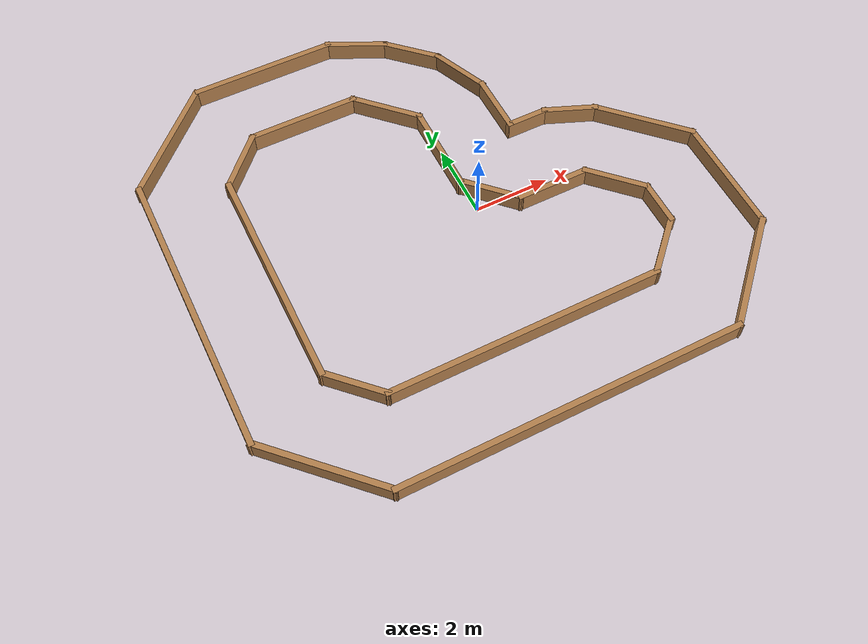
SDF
<?xml version='1.0'?>
<sdf version='1.6'>
  <model name='test-3'>
    <pose frame=''>-0.733583 0.254423 0 0 -0 0</pose>
    <link name='Wall_0'>
      <collision name='Wall_0_Collision'>
        <geometry>
          <box>
            <size>6 0.15 0.5</size>
          </box>
        </geometry>
        <pose frame=''>0 0 0.25 0 -0 0</pose>
      </collision>
      <visual name='Wall_0_Visual'>
        <pose frame=''>0 0 0.25 0 -0 0</pose>
        <geometry>
          <box>
            <size>6 0.15 0.5</size>
          </box>
        </geometry>
        <material>
          <script>
            <uri>file://media/materials/scripts/gazebo.material</uri>
            <name>Gazebo/Wood</name>
          </script>
          <ambient>1 1 1 1</ambient>
        </material>
      </visual>
      <pose frame=''>-4.64742 -0.004423 0 0 0 -1.5708</pose>
    </link>
    <link name='Wall_1'>
      <collision name='Wall_1_Collision'>
        <geometry>
          <box>
            <size>1.75 0.15 0.5</size>
          </box>
        </geometry>
        <pose frame=''>0 0 0.25 0 -0 0</pose>
      </collision>
      <visual name='Wall_1_Visual'>
        <pose frame=''>0 0 0.25 0 -0 0</pose>
        <geometry>
          <box>
            <size>1.75 0.15 0.5</size>
          </box>
        </geometry>
        <material>
          <script>
            <uri>file://media/materials/scripts/gazebo.material</uri>
            <name>Gazebo/Wood</name>
          </script>
          <ambient>1 1 1 1</ambient>
        </material>
      </visual>
      <pose frame=''>-4.08142 -3.49542 0 0 0 -0.785398</pose>
    </link>
    <link name='Wall_10'>
      <collision name='Wall_10_Collision'>
        <geometry>
          <box>
            <size>3 0.15 0.5</size>
          </box>
        </geometry>
        <pose frame=''>0 0 0.25 0 -0 0</pose>
      </collision>
      <visual name='Wall_10_Visual'>
        <pose frame=''>0 0 0.25 0 -0 0</pose>
        <geometry>
          <box>
            <size>3 0.15 0.5</size>
          </box>
        </geometry>
        <material>
          <script>
            <uri>file://media/materials/scripts/gazebo.material</uri>
            <name>Gazebo/Wood</name>
          </script>
          <ambient>1 1 1 1</ambient>
        </material>
      </visual>
      <pose frame=''>-2.13042 4.09158 0 0 -0 3.14159</pose>
    </link>
    <link name='Wall_11'>
      <collision name='Wall_11_Collision'>
        <geometry>
          <box>
            <size>1.75098 0.15 0.5</size>
          </box>
        </geometry>
        <pose frame=''>0 0 0.25 0 -0 0</pose>
      </collision>
      <visual name='Wall_11_Visual'>
        <pose frame=''>0 0 0.25 0 -0 0</pose>
        <geometry>
          <box>
            <size>1.75098 0.15 0.5</size>
          </box>
        </geometry>
        <material>
          <script>
            <uri>file://media/materials/scripts/gazebo.material</uri>
            <name>Gazebo/Wood</name>
          </script>
          <ambient>1 1 1 1</ambient>
        </material>
      </visual>
      <pose frame=''>-4.10142 3.50608 0 0 0 -2.3213</pose>
    </link>
    <link name='Wall_13'>
      <collision name='Wall_13_Collision'>
        <geometry>
          <box>
            <size>3.49886 0.15 0.5</size>
          </box>
        </geometry>
        <pose frame=''>0 0 0.25 0 -0 0</pose>
      </collision>
      <visual name='Wall_13_Visual'>
        <pose frame=''>0 0 0.25 0 -0 0</pose>
        <geometry>
          <box>
            <size>3.49886 0.15 0.5</size>
          </box>
        </geometry>
        <material>
          <script>
            <uri>file://media/materials/scripts/gazebo.material</uri>
            <name>Gazebo/Wood</name>
          </script>
          <ambient>1 1 1 1</ambient>
        </material>
      </visual>
      <pose frame=''>-5.52142 4.98458 0 0 0 -2.35619</pose>
    </link>
    <link name='Wall_14'>
      <collision name='Wall_14_Collision'>
        <geometry>
          <box>
            <size>7.75 0.15 0.5</size>
          </box>
        </geometry>
        <pose frame=''>0 0 0.25 0 -0 0</pose>
      </collision>
      <visual name='Wall_14_Visual'>
        <pose frame=''>0 0 0.25 0 -0 0</pose>
        <geometry>
          <box>
            <size>7.75 0.15 0.5</size>
          </box>
        </geometry>
        <material>
          <script>
            <uri>file://media/materials/scripts/gazebo.material</uri>
            <name>Gazebo/Wood</name>
          </script>
          <ambient>1 1 1 1</ambient>
        </material>
      </visual>
      <pose frame=''>-6.70542 0.000577 0 0 0 -1.5708</pose>
    </link>
    <link name='Wall_15'>
      <collision name='Wall_15_Collision'>
        <geometry>
          <box>
            <size>3.5 0.15 0.5</size>
          </box>
        </geometry>
        <pose frame=''>0 0 0.25 0 -0 0</pose>
      </collision>
      <visual name='Wall_15_Visual'>
        <pose frame=''>0 0 0.25 0 -0 0</pose>
        <geometry>
          <box>
            <size>3.5 0.15 0.5</size>
          </box>
        </geometry>
        <material>
          <script>
            <uri>file://media/materials/scripts/gazebo.material</uri>
            <name>Gazebo/Wood</name>
          </script>
          <ambient>1 1 1 1</ambient>
        </material>
      </visual>
      <pose frame=''>-5.52142 -4.98392 0 0 0 -0.785609</pose>
    </link>
    <link name='Wall_16'>
      <collision name='Wall_16_Collision'>
        <geometry>
          <box>
            <size>9 0.15 0.5</size>
          </box>
        </geometry>
        <pose frame=''>0 0 0.25 0 -0 0</pose>
      </collision>
      <visual name='Wall_16_Visual'>
        <pose frame=''>0 0 0.25 0 -0 0</pose>
        <geometry>
          <box>
            <size>9 0.15 0.5</size>
          </box>
        </geometry>
        <material>
          <script>
            <uri>file://media/materials/scripts/gazebo.material</uri>
            <name>Gazebo/Wood</name>
          </script>
          <ambient>1 1 1 1</ambient>
        </material>
      </visual>
      <pose frame=''>0.087583 -6.16842 0 0 -0 0</pose>
    </link>
    <link name='Wall_17'>
      <collision name='Wall_17_Collision'>
        <geometry>
          <box>
            <size>3.25 0.15 0.5</size>
          </box>
        </geometry>
        <pose frame=''>0 0 0.25 0 -0 0</pose>
      </collision>
      <visual name='Wall_17_Visual'>
        <pose frame=''>0 0 0.25 0 -0 0</pose>
        <geometry>
          <box>
            <size>3.25 0.15 0.5</size>
          </box>
        </geometry>
        <material>
          <script>
            <uri>file://media/materials/scripts/gazebo.material</uri>
            <name>Gazebo/Wood</name>
          </script>
          <ambient>1 1 1 1</ambient>
        </material>
      </visual>
      <pose frame=''>5.60908 -5.07242 0 0 -0 0.78517</pose>
    </link>
    <link name='Wall_18'>
      <collision name='Wall_18_Collision'>
        <geometry>
          <box>
            <size>3.25 0.15 0.5</size>
          </box>
        </geometry>
        <pose frame=''>0 0 0.25 0 -0 0</pose>
      </collision>
      <visual name='Wall_18_Visual'>
        <pose frame=''>0 0 0.25 0 -0 0</pose>
        <geometry>
          <box>
            <size>3.25 0.15 0.5</size>
          </box>
        </geometry>
        <material>
          <script>
            <uri>file://media/materials/scripts/gazebo.material</uri>
            <name>Gazebo/Wood</name>
          </script>
          <ambient>1 1 1 1</ambient>
        </material>
      </visual>
      <pose frame=''>6.70558 -2.42642 0 0 -0 1.5708</pose>
    </link>
    <link name='Wall_19'>
      <collision name='Wall_19_Collision'>
        <geometry>
          <box>
            <size>2.75 0.15 0.5</size>
          </box>
        </geometry>
        <pose frame=''>0 0 0.25 0 -0 0</pose>
      </collision>
      <visual name='Wall_19_Visual'>
        <pose frame=''>0 0 0.25 0 -0 0</pose>
        <geometry>
          <box>
            <size>2.75 0.15 0.5</size>
          </box>
        </geometry>
        <material>
          <script>
            <uri>file://media/materials/scripts/gazebo.material</uri>
            <name>Gazebo/Wood</name>
          </script>
          <ambient>1 1 1 1</ambient>
        </material>
      </visual>
      <pose frame=''>5.78608 0.042577 0 0 -0 2.35647</pose>
    </link>
    <link name='Wall_2'>
      <collision name='Wall_2_Collision'>
        <geometry>
          <box>
            <size>7.25 0.15 0.5</size>
          </box>
        </geometry>
        <pose frame=''>0 0 0.25 0 -0 0</pose>
      </collision>
      <visual name='Wall_2_Visual'>
        <pose frame=''>0 0 0.25 0 -0 0</pose>
        <geometry>
          <box>
            <size>7.25 0.15 0.5</size>
          </box>
        </geometry>
        <material>
          <script>
            <uri>file://media/materials/scripts/gazebo.material</uri>
            <name>Gazebo/Wood</name>
          </script>
          <ambient>1 1 1 1</ambient>
        </material>
      </visual>
      <pose frame=''>0.034583 -4.06142 0 0 -0 0</pose>
    </link>
    <link name='Wall_20'>
      <collision name='Wall_20_Collision'>
        <geometry>
          <box>
            <size>1.49228 0.15 0.5</size>
          </box>
        </geometry>
        <pose frame=''>0 0 0.25 0 -0 0</pose>
      </collision>
      <visual name='Wall_20_Visual'>
        <pose frame=''>0 0 0.25 0 -0 0</pose>
        <geometry>
          <box>
            <size>1.49228 0.15 0.5</size>
          </box>
        </geometry>
        <material>
          <script>
            <uri>file://media/materials/scripts/gazebo.material</uri>
            <name>Gazebo/Wood</name>
          </script>
          <ambient>1 1 1 1</ambient>
        </material>
      </visual>
      <pose frame=''>4.24508 1.21508 0 0 -0 2.75431</pose>
    </link>
    <link name='Wall_21'>
      <collision name='Wall_21_Collision'>
        <geometry>
          <box>
            <size>1.18189 0.15 0.5</size>
          </box>
        </geometry>
        <pose frame=''>0 0 0.25 0 -0 0</pose>
      </collision>
      <visual name='Wall_21_Visual'>
        <pose frame=''>0 0 0.25 0 -0 0</pose>
        <geometry>
          <box>
            <size>1.18189 0.15 0.5</size>
          </box>
        </geometry>
        <material>
          <script>
            <uri>file://media/materials/scripts/gazebo.material</uri>
            <name>Gazebo/Wood</name>
          </script>
          <ambient>1 1 1 1</ambient>
        </material>
      </visual>
      <pose frame=''>3.10808 1.46858 0 0 -0 3.14159</pose>
    </link>
    <link name='Wall_22'>
      <collision name='Wall_22_Collision'>
        <geometry>
          <box>
            <size>1.69243 0.15 0.5</size>
          </box>
        </geometry>
        <pose frame=''>0 0 0.25 0 -0 0</pose>
      </collision>
      <visual name='Wall_22_Visual'>
        <pose frame=''>0 0 0.25 0 -0 0</pose>
        <geometry>
          <box>
            <size>1.69243 0.15 0.5</size>
          </box>
        </geometry>
        <material>
          <script>
            <uri>file://media/materials/scripts/gazebo.material</uri>
            <name>Gazebo/Wood</name>
          </script>
          <ambient>1 1 1 1</ambient>
        </material>
      </visual>
      <pose frame=''>2.58808 2.24008 0 0 -0 1.57663</pose>
    </link>
    <link name='Wall_23'>
      <collision name='Wall_23_Collision'>
        <geometry>
          <box>
            <size>1.69023 0.15 0.5</size>
          </box>
        </geometry>
        <pose frame=''>0 0 0.25 0 -0 0</pose>
      </collision>
      <visual name='Wall_23_Visual'>
        <pose frame=''>0 0 0.25 0 -0 0</pose>
        <geometry>
          <box>
            <size>1.69023 0.15 0.5</size>
          </box>
        </geometry>
        <material>
          <script>
            <uri>file://media/materials/scripts/gazebo.material</uri>
            <name>Gazebo/Wood</name>
          </script>
          <ambient>1 1 1 1</ambient>
        </material>
      </visual>
      <pose frame=''>2.27858 3.71858 0 0 -0 1.97808</pose>
    </link>
    <link name='Wall_24'>
      <collision name='Wall_24_Collision'>
        <geometry>
          <box>
            <size>1.67911 0.15 0.5</size>
          </box>
        </geometry>
        <pose frame=''>0 0 0.25 0 -0 0</pose>
      </collision>
      <visual name='Wall_24_Visual'>
        <pose frame=''>0 0 0.25 0 -0 0</pose>
        <geometry>
          <box>
            <size>1.67911 0.15 0.5</size>
          </box>
        </geometry>
        <material>
          <script>
            <uri>file://media/materials/scripts/gazebo.material</uri>
            <name>Gazebo/Wood</name>
          </script>
          <ambient>1 1 1 1</ambient>
        </material>
      </visual>
      <pose frame=''>1.42158 4.95458 0 0 -0 2.37747</pose>
    </link>
    <link name='Wall_25'>
      <collision name='Wall_25_Collision'>
        <geometry>
          <box>
            <size>1.70828 0.15 0.5</size>
          </box>
        </geometry>
        <pose frame=''>0 0 0.25 0 -0 0</pose>
      </collision>
      <visual name='Wall_25_Visual'>
        <pose frame=''>0 0 0.25 0 -0 0</pose>
        <geometry>
          <box>
            <size>1.70828 0.15 0.5</size>
          </box>
        </geometry>
        <material>
          <script>
            <uri>file://media/materials/scripts/gazebo.material</uri>
            <name>Gazebo/Wood</name>
          </script>
          <ambient>1 1 1 1</ambient>
        </material>
      </visual>
      <pose frame=''>0.168583 5.82308 0 0 -0 2.69058</pose>
    </link>
    <link name='Wall_26'>
      <collision name='Wall_26_Collision'>
        <geometry>
          <box>
            <size>3.91123 0.15 0.5</size>
          </box>
        </geometry>
        <pose frame=''>0 0 0.25 0 -0 0</pose>
      </collision>
      <visual name='Wall_26_Visual'>
        <pose frame=''>0 0 0.25 0 -0 0</pose>
        <geometry>
          <box>
            <size>3.91123 0.15 0.5</size>
          </box>
        </geometry>
        <material>
          <script>
            <uri>file://media/materials/scripts/gazebo.material</uri>
            <name>Gazebo/Wood</name>
          </script>
          <ambient>1 1 1 1</ambient>
        </material>
      </visual>
      <pose frame=''>-2.41292 6.16258 0 0 -0 3.14159</pose>
    </link>
    <link name='Wall_3'>
      <collision name='Wall_3_Collision'>
        <geometry>
          <box>
            <size>1.75 0.15 0.5</size>
          </box>
        </geometry>
        <pose frame=''>0 0 0.25 0 -0 0</pose>
      </collision>
      <visual name='Wall_3_Visual'>
        <pose frame=''>0 0 0.25 0 -0 0</pose>
        <geometry>
          <box>
            <size>1.75 0.15 0.5</size>
          </box>
        </geometry>
        <material>
          <script>
            <uri>file://media/materials/scripts/gazebo.material</uri>
            <name>Gazebo/Wood</name>
          </script>
          <ambient>1 1 1 1</ambient>
        </material>
      </visual>
      <pose frame=''>4.15008 -3.49542 0 0 -0 0.78584</pose>
    </link>
    <link name='Wall_4'>
      <collision name='Wall_4_Collision'>
        <geometry>
          <box>
            <size>1.25 0.15 0.5</size>
          </box>
        </geometry>
        <pose frame=''>0 0 0.25 0 -0 0</pose>
      </collision>
      <visual name='Wall_4_Visual'>
        <pose frame=''>0 0 0.25 0 -0 0</pose>
        <geometry>
          <box>
            <size>1.25 0.15 0.5</size>
          </box>
        </geometry>
        <material>
          <script>
            <uri>file://media/materials/scripts/gazebo.material</uri>
            <name>Gazebo/Wood</name>
          </script>
          <ambient>1 1 1 1</ambient>
        </material>
      </visual>
      <pose frame=''>4.71558 -2.37942 0 0 -0 1.5708</pose>
    </link>
    <link name='Wall_5'>
      <collision name='Wall_5_Collision'>
        <geometry>
          <box>
            <size>1.75 0.15 0.5</size>
          </box>
        </geometry>
        <pose frame=''>0 0 0.25 0 -0 0</pose>
      </collision>
      <visual name='Wall_5_Visual'>
        <pose frame=''>0 0 0.25 0 -0 0</pose>
        <geometry>
          <box>
            <size>1.75 0.15 0.5</size>
          </box>
        </geometry>
        <material>
          <script>
            <uri>file://media/materials/scripts/gazebo.material</uri>
            <name>Gazebo/Wood</name>
          </script>
          <ambient>1 1 1 1</ambient>
        </material>
      </visual>
      <pose frame=''>4.15008 -1.26392 0 0 -0 2.35619</pose>
    </link>
    <link name='Wall_6'>
      <collision name='Wall_6_Collision'>
        <geometry>
          <box>
            <size>2 0.15 0.5</size>
          </box>
        </geometry>
        <pose frame=''>0 0 0.25 0 -0 0</pose>
      </collision>
      <visual name='Wall_6_Visual'>
        <pose frame=''>0 0 0.25 0 -0 0</pose>
        <geometry>
          <box>
            <size>2 0.15 0.5</size>
          </box>
        </geometry>
        <material>
          <script>
            <uri>file://media/materials/scripts/gazebo.material</uri>
            <name>Gazebo/Wood</name>
          </script>
          <ambient>1 1 1 1</ambient>
        </material>
      </visual>
      <pose frame=''>2.65958 -0.698423 0 0 -0 3.14159</pose>
    </link>
    <link name='Wall_7'>
      <collision name='Wall_7_Collision'>
        <geometry>
          <box>
            <size>1.75 0.15 0.5</size>
          </box>
        </geometry>
        <pose frame=''>0 0 0.25 0 -0 0</pose>
      </collision>
      <visual name='Wall_7_Visual'>
        <pose frame=''>0 0 0.25 0 -0 0</pose>
        <geometry>
          <box>
            <size>1.75 0.15 0.5</size>
          </box>
        </geometry>
        <material>
          <script>
            <uri>file://media/materials/scripts/gazebo.material</uri>
            <name>Gazebo/Wood</name>
          </script>
          <ambient>1 1 1 1</ambient>
        </material>
      </visual>
      <pose frame=''>1.16858 -0.132923 0 0 -0 2.35664</pose>
    </link>
    <link name='Wall_8'>
      <collision name='Wall_8_Collision'>
        <geometry>
          <box>
            <size>2.5 0.15 0.5</size>
          </box>
        </geometry>
        <pose frame=''>0 0 0.25 0 -0 0</pose>
      </collision>
      <visual name='Wall_8_Visual'>
        <pose frame=''>0 0 0.25 0 -0 0</pose>
        <geometry>
          <box>
            <size>2.5 0.15 0.5</size>
          </box>
        </geometry>
        <material>
          <script>
            <uri>file://media/materials/scripts/gazebo.material</uri>
            <name>Gazebo/Wood</name>
          </script>
          <ambient>1 1 1 1</ambient>
        </material>
      </visual>
      <pose frame=''>0.602583 1.60758 0 0 -0 1.5708</pose>
    </link>
    <link name='Wall_9'>
      <collision name='Wall_9_Collision'>
        <geometry>
          <box>
            <size>2 0.15 0.5</size>
          </box>
        </geometry>
        <pose frame=''>0 0 0.25 0 -0 0</pose>
      </collision>
      <visual name='Wall_9_Visual'>
        <pose frame=''>0 0 0.25 0 -0 0</pose>
        <geometry>
          <box>
            <size>2 0.15 0.5</size>
          </box>
        </geometry>
        <material>
          <script>
            <uri>file://media/materials/scripts/gazebo.material</uri>
            <name>Gazebo/Wood</name>
          </script>
          <ambient>1 1 1 1</ambient>
        </material>
      </visual>
      <pose frame=''>-0.051417 3.43708 0 0 -0 2.35581</pose>
    </link>
    <static>1</static>
  </model>
</sdf>
